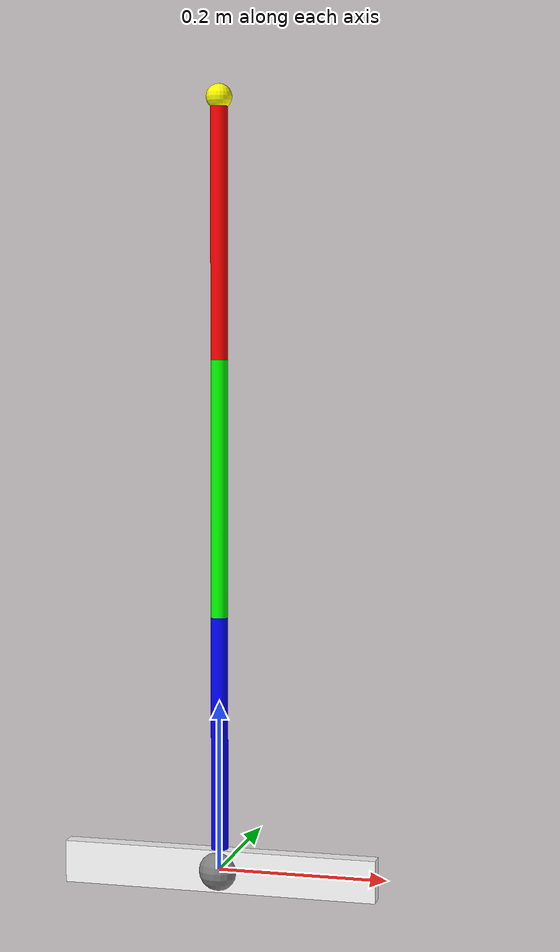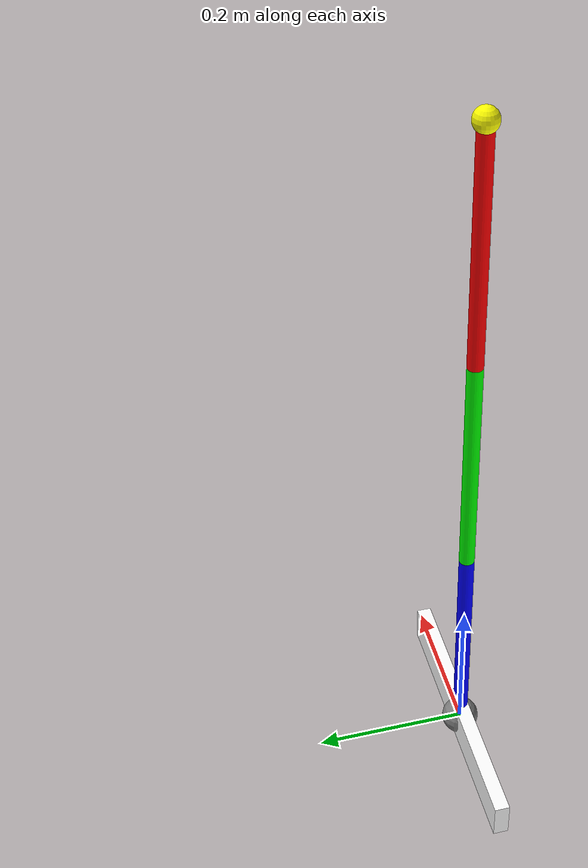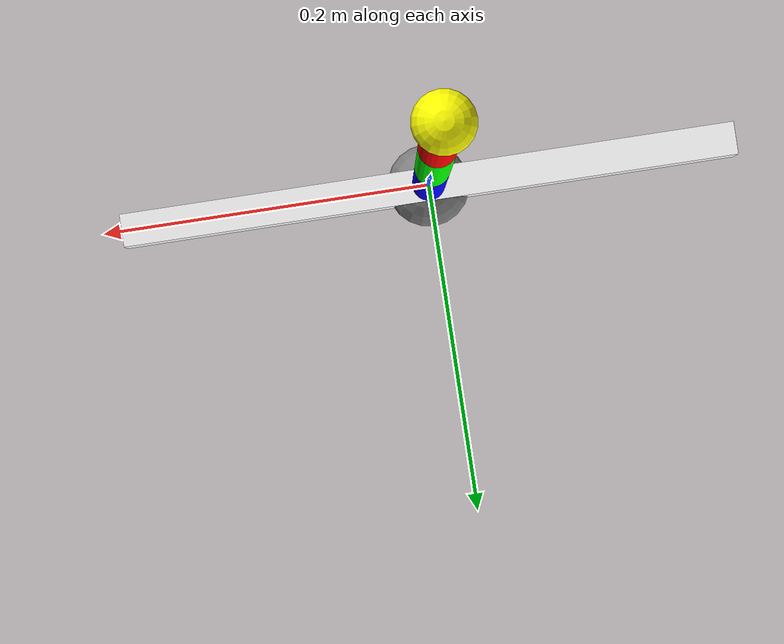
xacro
<?xml version="1.0"?>
<robot xmlns:xacro="http://www.ros.org/wiki/xacro" name="second_robot">
    <xacro:arg name="initial_positions_file" default="initial_positions.yaml" />

    <!-- Import second_robot urdf file -->
    <xacro:include filename="$(find second_robot)/description/robot.urdf.xacro" />

    <!-- Import control_xacro -->
    <xacro:include filename="second_robot.ros2_control.xacro" />

    <xacro:second_robot_ros2_control name="FakeSystem" initial_positions_file="$(arg initial_positions_file)"/>

</robot>

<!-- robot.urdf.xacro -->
<robot xmlns:xacro="http://ros.org/wiki/xacro" name="second_robot">

  <xacro:include filename="$(find second_robot)/description/constants.xacro"/>
  <xacro:include filename="$(find second_robot)/description/robot_core.xacro"/>
  <xacro:include filename="$(find second_robot)/description/gz_control.xacro"/>

</robot>

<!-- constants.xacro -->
<robot xmlns:xacro="http://www.ros.org/wiki/xacro">
    <material name="white">
        <color rgba="1 1 1 1" />
    </material>

    <material name="blue">
        <color rgba="0 0 1 1" />
    </material>
    <material name="green">
        <color rgba="0 1 0 1" />
    </material>
    <material name="yellow">
        <color rgba="1 1 0 1" />
    </material>
    <material name="cyan">
        <color rgba="0 1 1 1" />
    </material>
    <material name="pink">
        <color rgba="1 0.5 0.5 1" />
    </material>
    <material name="gray">
        <color rgba="0.5 0.5 0.5 1" />
    </material>

    <material name="purple">
        <color rgba="0.5 0 0.5 1" />
    </material>
    <material name="black">
        <color rgba="0 0 0 1" />
    </material>

    <material name="silver">
        <color rgba="${233/255} ${233/255} ${216/255} 1.0"/>
    </material>

    <material name="orange">
        <color rgba="${255/255} ${108/255} ${10/255} 1.0"/>
    </material>

    <material name="brown">
        <color rgba="${222/255} ${207/255} ${195/255} 1.0"/>
    </material>

    <material name="red">
        <color rgba="0.8 0.0 0.0 1.0"/>
    </material>

    <!-- Constants for robot dimensions -->
  <xacro:property name="link_length" value="0.3"/>
  <xacro:property name="link_radius" value="0.01"/>

</robot>

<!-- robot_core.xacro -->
<robot xmlns:xacro="http://www.ros.org/wiki/xacro">

  <!-- Base Link -->
  <link name="base_link">
    <visual name="base_link_visual">
      <origin rpy="0 0 0" xyz="0 0 0" />
      <geometry>
        <box size="0.3762 0.02 0.05" />
      </geometry>
      <material name="white" />
    </visual>
    <inertial>
      <origin xyz="0 0 0" />
      <mass value="2.2" />
      <inertia ixx="0.001" iyy="0.001" izz="0.001" ixy="0" ixz="0" iyz="0" />
    </inertial>
    <collision name="base_collision">
      <origin xyz="0 0 0" rpy="0 0 0" />
      <geometry>
        <box size="0.3762 0.02 0.05" />
      </geometry>
    </collision>
  </link>

  <!-- Base to Shoulder Joint -->
  <joint name="base_to_shoulder_joint" type="fixed">
    <parent link="base_link" />
    <child link="shoulder_link" />
    <origin xyz="0 0 0" rpy="0 0 0" />
    <limit lower="-2.0" upper="2.0" effort="5.0" velocity="1.0"/>
  </joint>

  <!-- Shoulder Link -->
  <link name="shoulder_link">
    <visual>
      <geometry>
        <sphere radius="0.025" />
      </geometry>
      <origin xyz="0 0 0" rpy="0 0 0" />
      <material name="gray" />
    </visual>
    <collision>
      <geometry>
        <sphere radius="0.025" />
      </geometry>
      <origin xyz="0 0 0" rpy="0 0 0" />
    </collision>
    <inertial>
      <origin xyz="0 0 0" />
      <mass value="0.2" />
      <inertia ixx="0.00005" iyy="0.00005" izz="0.00005" ixy="0" ixz="0" iyz="0" />
    </inertial>
  </link>

  <!-- Shoulder Joint -->
  <joint name="shoulder_joint" type="revolute">
    <parent link="shoulder_link" />
    <child link="upper_arm_link" />
    <origin xyz="0 0 0" rpy="0 0 0" />
    <axis xyz="0 0 1" />
    <limit lower="-3.14" upper="3.14" effort="1.0" velocity="2.0" />
  </joint>

  <!-- Upper Arm Link -->
  <link name="upper_arm_link">
    <visual>
      <geometry>
        <cylinder length="${link_length}" radius="${link_radius}" />
      </geometry>
      <origin xyz="0 0 ${link_length/2}" rpy="0 0 0" />
      <material name="blue">
        <color rgba="0 0 1 1" />
      </material>
    </visual>
    <collision>
      <geometry>
        <cylinder length="${link_length}" radius="${link_radius}" />
      </geometry>
      <origin xyz="0 0 ${link_length/2}" rpy="0 0 0" />
    </collision>
    <inertial>
      <origin xyz="0 0 ${link_length/2}" rpy="0 0 0" />
      <mass value="0.15" />
      <inertia ixx="0.00012" iyy="0.00012" izz="0.00002" ixy="0" ixz="0" iyz="0" />
    </inertial>
  </link>

  <!-- Elbow Joint -->
  <joint name="elbow_joint" type="revolute">
    <parent link="upper_arm_link" />
    <child link="forearm_link" />
    <origin xyz="0 0 ${link_length}" rpy="0 0 0" />
    <axis xyz="0 0 1" />
    <limit lower="-3.14" upper="3.14" effort="1.0" velocity="2.0" />
  </joint>

  <!-- Forearm Link -->
  <link name="forearm_link">
    <visual>
      <geometry>
        <cylinder length="${link_length}" radius="${link_radius}" />
      </geometry>
      <origin xyz="0 0 ${link_length/2}" rpy="0 0 0" />
      <material name="green">
        <color rgba="0 1 0 1" />
      </material>
    </visual>
    <collision>
      <geometry>
        <cylinder length="${link_length}" radius="${link_radius}" />
      </geometry>
      <origin xyz="0 0 ${link_length/2}" rpy="0 0 0" />
    </collision>
    <inertial>
      <origin xyz="0 0 ${link_length/2}" rpy="0 0 0" />
      <mass value="0.12" />
      <inertia ixx="0.00010" iyy="0.00010" izz="0.000015" ixy="0" ixz="0" iyz="0" />
    </inertial>
  </link>

  <!-- Wrist Joint -->
  <joint name="wrist_joint" type="revolute">
    <parent link="forearm_link" />
    <child link="wrist_link" />
    <origin xyz="0 0 ${link_length}" rpy="0 0 0" />
    <axis xyz="0 0 1" />
    <limit lower="-3.14" upper="3.14" effort="1.0" velocity="2.0" />
  </joint>

  <!-- Wrist Link -->
  <link name="wrist_link">
    <visual>
      <geometry>
        <cylinder length="${link_length}" radius="${link_radius}" />
      </geometry>
      <origin xyz="0 0 ${link_length/2}" rpy="0 0 0" />
      <material name="red">
        <color rgba="1 0 0 1" />
      </material>
    </visual>
    <collision>
      <geometry>
        <cylinder length="${link_length}" radius="${link_radius}" />
      </geometry>
      <origin xyz="0 0 ${link_length/2}" rpy="0 0 0" />
    </collision>
    <inertial>
      <origin xyz="0 0 ${link_length/2}" rpy="0 0 0" />
      <mass value="0.08" />
      <inertia ixx="0.00007" iyy="0.00007" izz="0.00001" ixy="0" ixz="0" iyz="0" />
    </inertial>
  </link>

  <!-- End Effector -->
  <link name="end_effector_link">
    <visual>
      <geometry>
        <sphere radius="0.015" />
      </geometry>
      <origin xyz="0 0 0" rpy="0 0 0" />
      <material name="yellow">
        <color rgba="1 1 0 1" />
      </material>
    </visual>
    <collision>
      <geometry>
        <sphere radius="0.015" />
      </geometry>
      <origin xyz="0 0 0" rpy="0 0 0" />
    </collision>
    <inertial>
      <origin xyz="0 0 0" />
      <mass value="0.02" />
      <inertia ixx="0.00001" iyy="0.00001" izz="0.00001" ixy="0" ixz="0" iyz="0" />
    </inertial>
  </link>

  <!-- End Effector Joint -->
  <joint name="ee_fixed_joint" type="fixed">
    <parent link="wrist_link" />
    <child link="end_effector_link" />
    <origin xyz="0 0 ${link_length}" rpy="0 0 0" />
  </joint>

<transmission name="trans_shoulder">
  <type>transmission_interface/SimpleTransmission</type>
  <joint name="shoulder_joint">
    <hardwareInterface>hardware_interface/PositionJointInterface</hardwareInterface>
  </joint>
  <actuator name="shoulder_motor">
    <hardwareInterface>hardware_interface/PositionJointInterface</hardwareInterface>
    <mechanicalReduction>1</mechanicalReduction>
  </actuator>
</transmission>

<transmission name="trans_elbow">
  <type>transmission_interface/SimpleTransmission</type>
  <joint name="elbow_joint">
    <hardwareInterface>hardware_interface/PositionJointInterface</hardwareInterface>
  </joint>
  <actuator name="elbow_motor">
    <hardwareInterface>hardware_interface/PositionJointInterface</hardwareInterface>
    <mechanicalReduction>1</mechanicalReduction>
  </actuator>
</transmission>

<transmission name="trans_wrist">
  <type>transmission_interface/SimpleTransmission</type>
  <joint name="wrist_joint">
    <hardwareInterface>hardware_interface/PositionJointInterface</hardwareInterface>
  </joint>
  <actuator name="wrist_motor">
    <hardwareInterface>hardware_interface/PositionJointInterface</hardwareInterface>
    <mechanicalReduction>1</mechanicalReduction>
  </actuator>
</transmission>

</robot>
